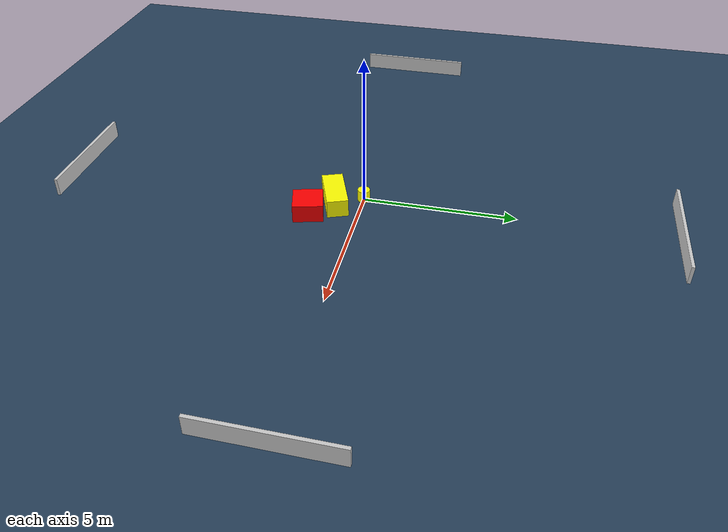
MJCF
<?xml version="1.0" ?>
<mujoco model="generated_environment">
  <option timestep="0.01" integrator="RK4" cone="elliptic"/>
  <default>
    <geom density="1"/>
  </default>
  <asset>
    <texture builtin="gradient" height="3072" name="skybox" rgb1="0.3 0.5 0.7" rgb2="0 0 0" type="skybox" width="512"/>
    <texture builtin="checker" height="300" name="groundplane" rgb1="0.2 0.3 0.4" rgb2="0.1 0.2 0.3" type="2d" width="300"/>
    <material name="groundplane" reflectance="0.2" texrepeat="5 5" texture="groundplane"/>
  </asset>
  <worldbody>
    <light dir="0 0 -1" directional="true" pos="0 0 1.5"/>
    <geom condim="3" friction="0.5 0.005 0.001" material="groundplane" name="floor" pos="0 0 0" size="0 0 0.05" type="plane"/>
    <body name="walls">
      <geom name="wall_1" condim="4" pos="-10.0 0.0 0.3" rgba="0.800000011920929 0.800000011920929 0.800000011920929 1.0" size="0.05 2.0 0.3" type="box"/>
      <geom name="wall_2" condim="4" pos="10.0 0.0 0.3" rgba="0.800000011920929 0.800000011920929 0.800000011920929 1.0" size="0.05 2.0 0.3" type="box"/>
      <geom name="wall_3" condim="4" pos="0.0 -10.0 0.3" rgba="0.800000011920929 0.800000011920929 0.800000011920929 1.0" size="2.0 0.05 0.3" type="box"/>
      <geom name="wall_4" condim="4" pos="0.0 10.0 0.3" rgba="0.800000011920929 0.800000011920929 0.800000011920929 1.0" size="2.0 0.05 0.3" type="box"/>
    </body>
    <body name="robot">
      <joint name="joint_x" type="slide" pos="0 0 0" axis="1 0 0"/>
      <joint name="joint_y" type="slide" pos="0 0 0" axis="0 1 0"/>
      <geom name="robot" type="cylinder" pos="0.0 0.0 0.2" size="0.2 0.2 0.0" mass="5.0" friction="1.0 0.005 0.0001" condim="4" rgba="1.0 1.0 0.0 1.0"/>
    </body>
    <body name="obstacle_1_movable">
      <geom name="obstacle_1_movable" condim="4" pos="0.38507953671119716 -0.8836231510564757 0.3" euler="0 0 201.1529771939551" friction="0.0 0.005 0.001" rgba="1.0 1.0 0.0 1.0" size="0.7839854024248787 0.3462913433100336 0.3" type="box" mass="0.1"/>
      <joint type="free"/>
    </body>
    <body name="obstacle_2_static">
      <geom name="obstacle_2_static" condim="4" pos="1.1335322761938933 -1.5826050440552084 0.3" euler="0 0 194.7024010734857" friction="0.0 0.005 0.001" rgba="1.0 0.0 0.0 1.0" size="0.4834783690911078 0.48749698188068835 0.3" type="box"/>
    </body>
  </worldbody>
  <actuator>
    <motor name="actuator_x" joint="joint_x" gear="1" ctrlrange="-1 1"/>
    <motor name="actuator_y" joint="joint_y" gear="1" ctrlrange="-1 1"/>
  </actuator>
</mujoco>
